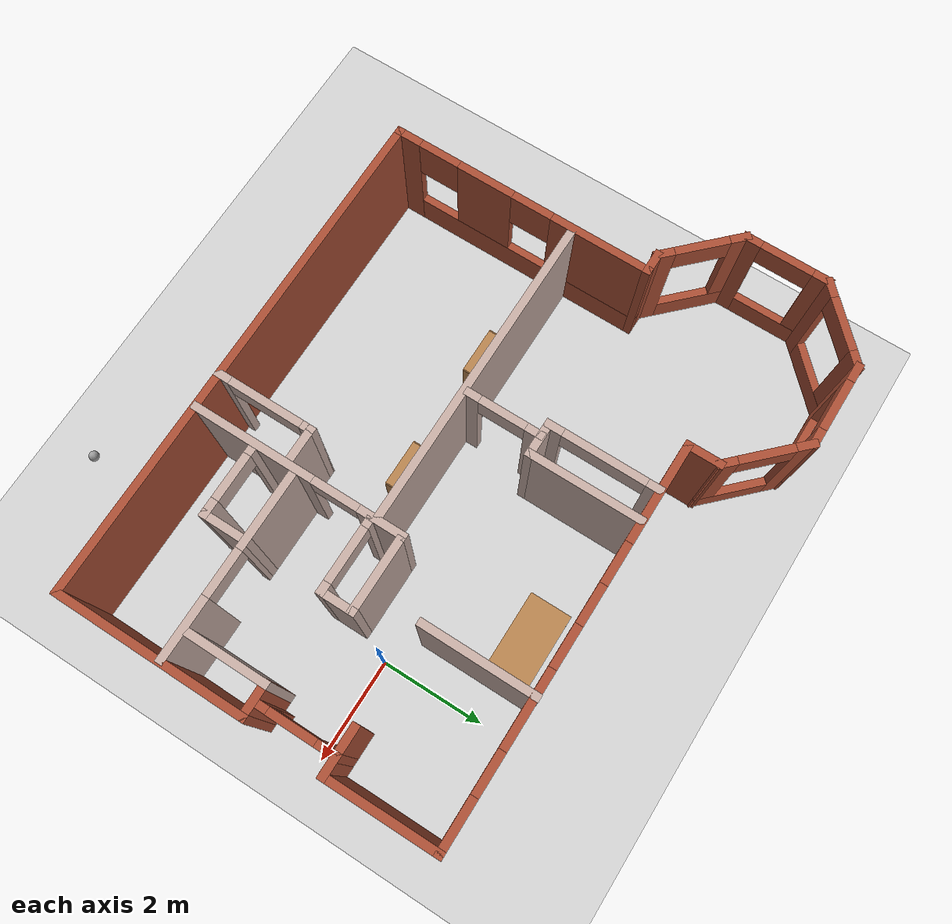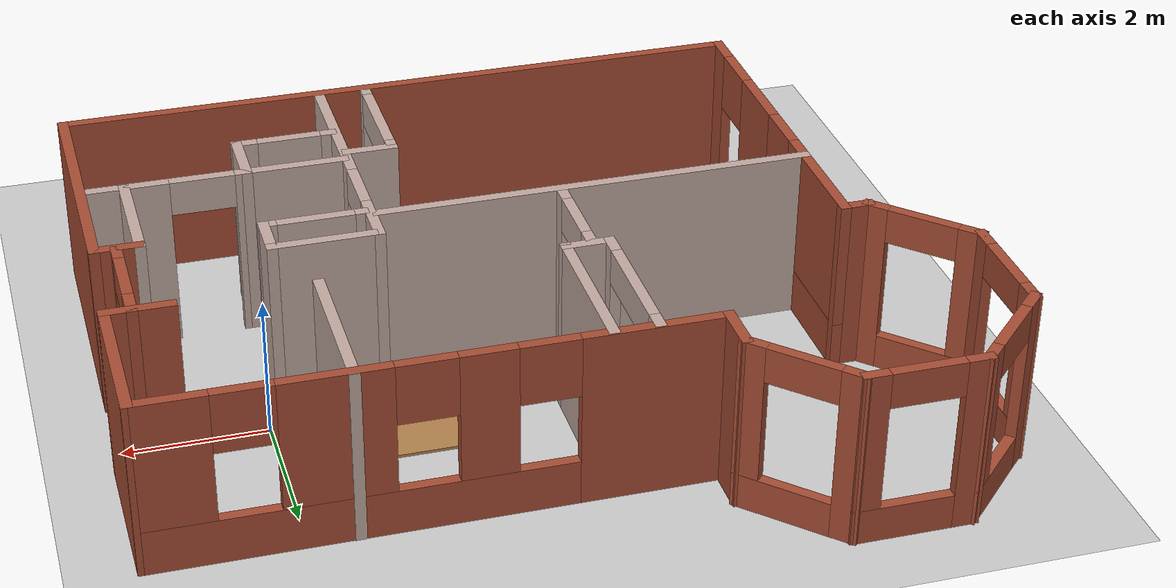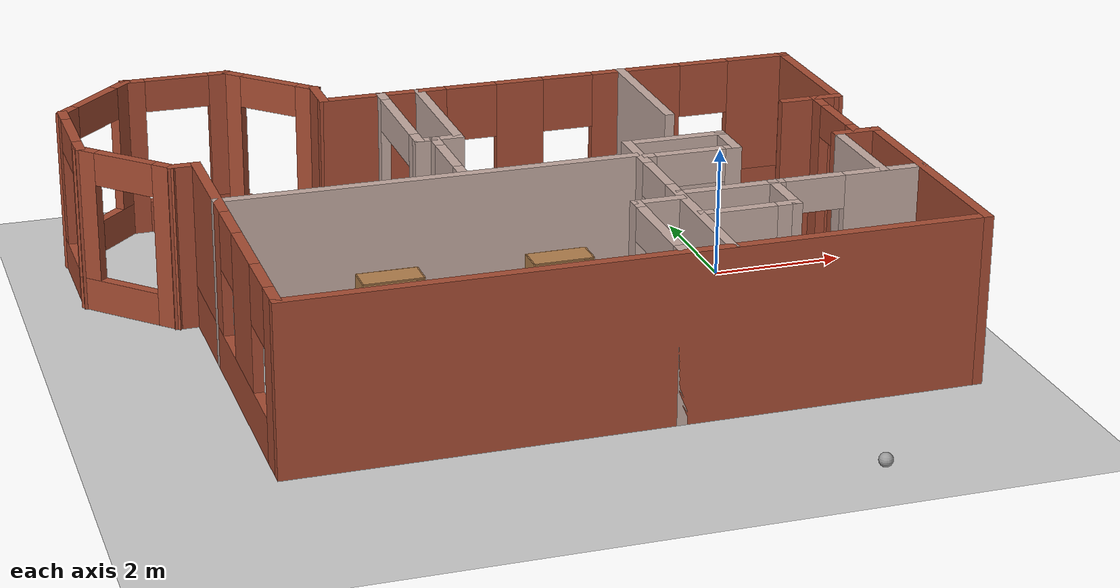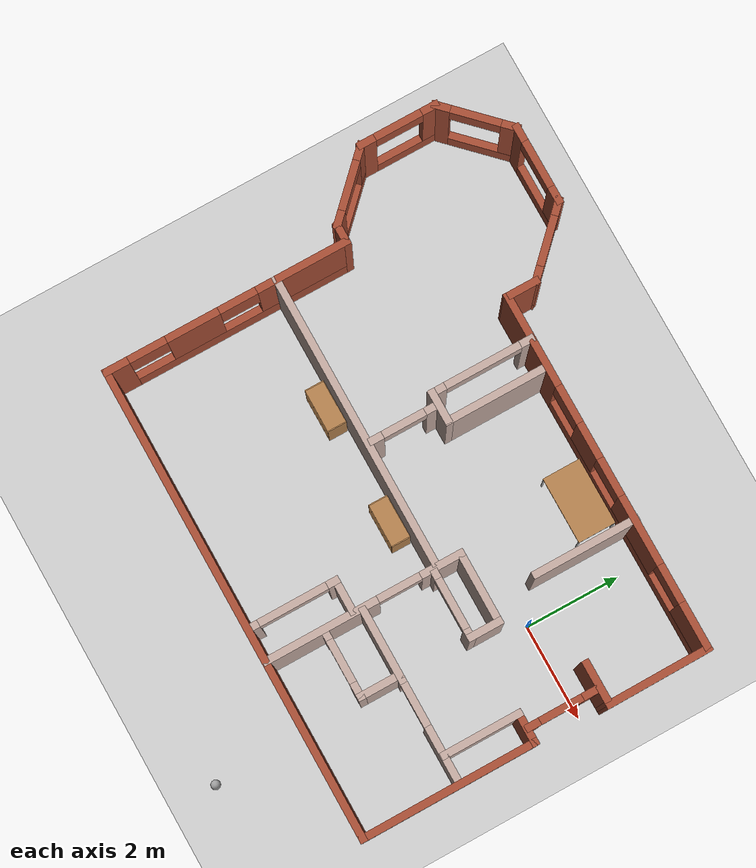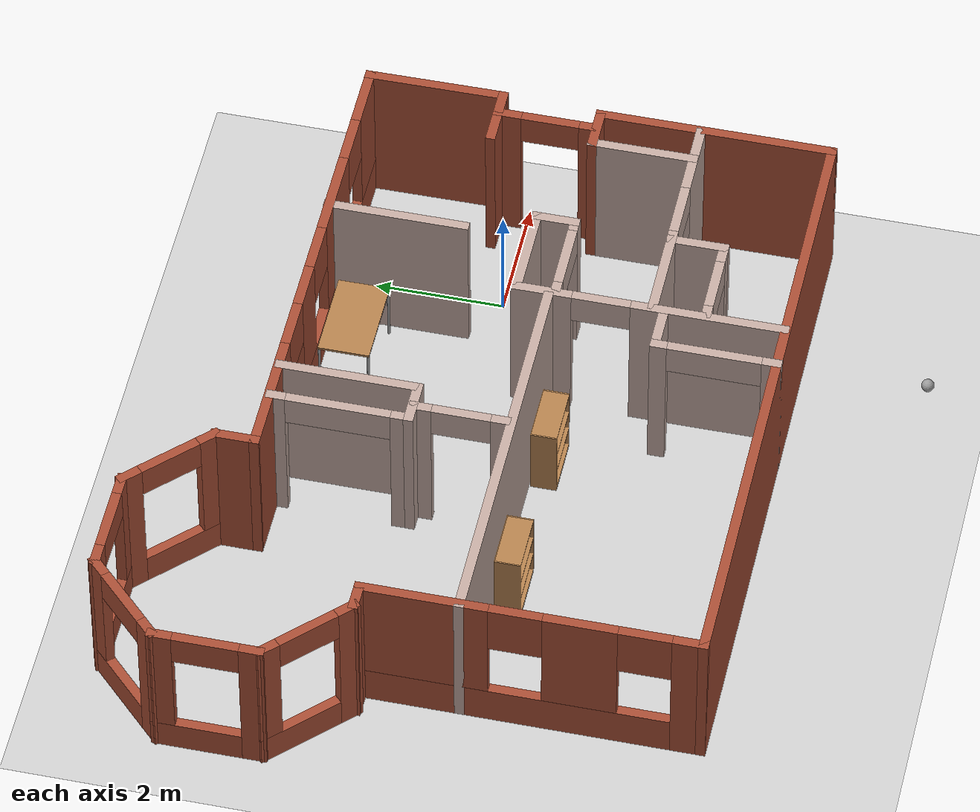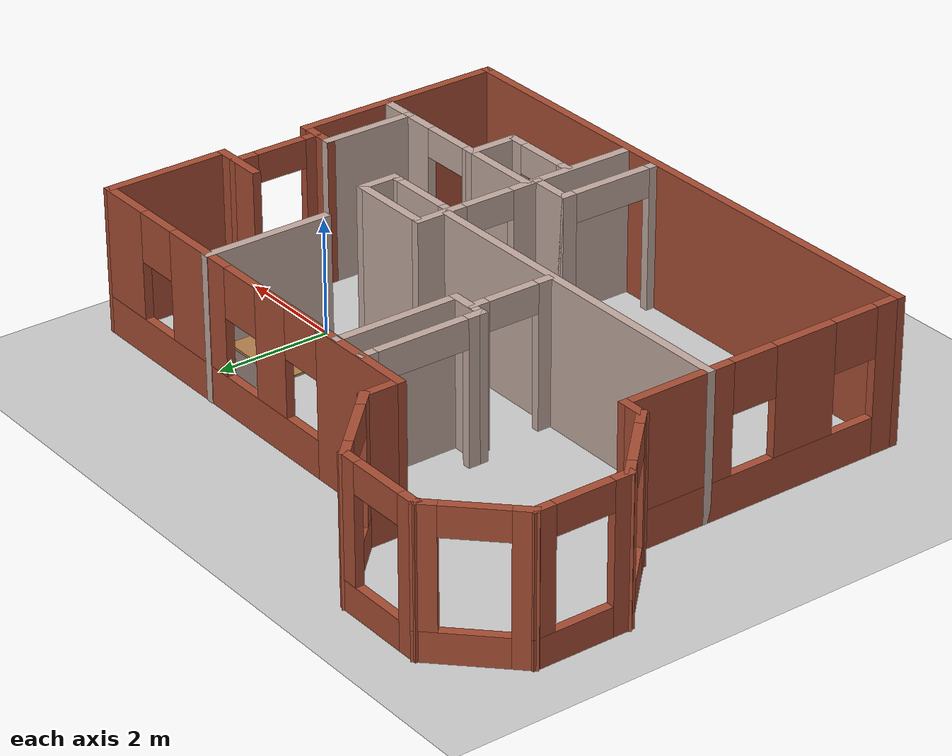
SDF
<sdf version="1.6">
 <world name="default">
  <model name="ground_plane">
   <static>1</static>
   <link name="link">
    <collision name="collision">
     <geometry><plane><normal>0 0 1</normal><size>100 100</size></plane></geometry>
     <surface><friction><ode><mu>100</mu><mu2>50</mu2></ode></friction></surface>
    </collision>
    <visual name="visual">
     <cast_shadows>0</cast_shadows>
     <geometry><plane><normal>0 0 1</normal><size>100 100</size></plane></geometry>
     <material>
      <script><uri>file://media/materials/scripts/gazebo.material</uri><name>Gazebo/Grey</name></script>
     </material>
    </visual>
   </link>
  </model>
  <light name="sun" type="directional">
   <pose>0 0 10 0 -0 0</pose>
   <diffuse>0.8 0.8 0.8 1</diffuse>
   <specular>0.2 0.2 0.2 1</specular>
   <attenuation>
    <range>1000</range>
    <constant>0.9</constant>
    <linear>0.01</linear>
    <quadratic>0.001</quadratic>
   </attenuation>
   <direction>-0.5 0.1 -0.9</direction>
  </light>
  <gravity>0 0 -9.8</gravity>
  <magnetic_field>6e-06 2.3e-05 -4.2e-05</magnetic_field>
  <atmosphere type="adiabatic"/>
  <physics name="default_physics" default="0" type="ode">
   <max_step_size>0.001</max_step_size>
   <real_time_factor>1</real_time_factor>
   <real_time_update_rate>1000</real_time_update_rate>
  </physics>
  <scene><ambient>0.4 0.4 0.4 1</ambient><background>0.7 0.7 0.7 1</background><shadows>1</shadows></scene>
  <audio><device>default</device></audio>
  <spherical_coordinates>
   <surface_model>EARTH_WGS84</surface_model>
   <latitude_deg>0</latitude_deg>
   <longitude_deg>0</longitude_deg>
   <elevation>0</elevation>
   <heading_deg>0</heading_deg>
  </spherical_coordinates>
  <model name="house">
   <pose>-3.64676 -0.18706 0 0 -0 0</pose>
   <link name="Wall_0">
    <collision name="Wall_0_Collision">
     <geometry><box><size>10 0.15 2.5</size></box></geometry>
     <pose>0 0 1.25 0 -0 0</pose>
    </collision>
    <visual name="Wall_0_Visual">
     <pose>0 0 1.25 0 -0 0</pose>
     <geometry><box><size>10 0.15 2.5</size></box></geometry>
     <material>
      <script><uri>file://media/materials/scripts/gazebo.material</uri><name>Gazebo/Bricks</name></script>
      <ambient>1 1 1 1</ambient>
     </material>
     <meta><layer>0</layer></meta>
    </visual>
    <pose>0.726039 -4.4969 0 0 -0 0</pose>
   </link>
   <link name="Wall_1">
    <collision name="Wall_1_Collision">
     <geometry><box><size>3.75 0.15 2.5</size></box></geometry>
     <pose>0 0 1.25 0 -0 0</pose>
    </collision>
    <visual name="Wall_1_Visual">
     <pose>0 0 1.25 0 -0 0</pose>
     <geometry><box><size>3.75 0.15 2.5</size></box></geometry>
     <material>
      <script><uri>file://media/materials/scripts/gazebo.material</uri><name>Gazebo/Bricks</name></script>
      <ambient>1 1 1 1</ambient>
     </material>
     <meta><layer>0</layer></meta>
    </visual>
    <pose>5.65104 -2.6969 0 0 -0 1.5708</pose>
   </link>
   <link name="Wall_10">
    <pose>1.96104 -2.4319 0 0 -0 1.5708</pose>
    <visual name="Wall_10_Visual_0">
     <pose>-0.9125 0 1.25 0 -0 0</pose>
     <geometry><box><size>2.415 0.15 2.5</size></box></geometry>
     <material>
      <script><uri>file://media/materials/scripts/gazebo.material</uri><name>Gazebo/Grey</name></script>
      <ambient>0.760784 0.662745 0.627451 1</ambient>
     </material>
     <meta><layer>0</layer></meta>
    </visual>
    <collision name="Wall_10_Collision_0">
     <geometry><box><size>2.415 0.15 2.5</size></box></geometry>
     <pose>-0.9125 0 1.25 0 -0 0</pose>
    </collision>
    <visual name="Wall_10_Visual_1">
     <pose>1.6575 0 1.25 0 -0 0</pose>
     <geometry><box><size>0.925 0.15 2.5</size></box></geometry>
     <material>
      <script><uri>file://media/materials/scripts/gazebo.material</uri><name>Gazebo/Grey</name></script>
      <ambient>0.760784 0.662745 0.627451 1</ambient>
     </material>
     <meta><layer>0</layer></meta>
    </visual>
    <collision name="Wall_10_Collision_1">
     <geometry><box><size>0.925 0.15 2.5</size></box></geometry>
     <pose>1.6575 0 1.25 0 -0 0</pose>
    </collision>
    <visual name="Wall_10_Visual_2">
     <pose>0.745 0 2.25 0 -0 0</pose>
     <geometry><box><size>0.9 0.15 0.5</size></box></geometry>
     <material>
      <script><uri>file://media/materials/scripts/gazebo.material</uri><name>Gazebo/Grey</name></script>
      <ambient>0.760784 0.662745 0.627451 1</ambient>
     </material>
     <meta><layer>0</layer></meta>
    </visual>
    <collision name="Wall_10_Collision_2">
     <geometry><box><size>0.9 0.15 0.5</size></box></geometry>
     <pose>0.745 0 2.25 0 -0 0</pose>
    </collision>
   </link>
   <link name="Wall_12">
    <collision name="Wall_12_Collision">
     <geometry><box><size>0.74 0.15 2.5</size></box></geometry>
     <pose>0 0 1.25 0 -0 0</pose>
    </collision>
    <visual name="Wall_12_Visual">
     <pose>0 0 1.25 0 -0 0</pose>
     <geometry><box><size>0.74 0.15 2.5</size></box></geometry>
     <material>
      <script><uri>file://media/materials/scripts/gazebo.material</uri><name>Gazebo/Grey</name></script>
      <ambient>0.760784 0.662745 0.627451 1</ambient>
     </material>
     <meta><layer>0</layer></meta>
    </visual>
    <pose>3.40104 -0.681904 0 0 -0 -1.5708</pose>
   </link>
   <link name="Wall_13">
    <pose>2.72604 -0.976904 0 0 -0 3.14159</pose>
    <visual name="Wall_13_Visual_0">
     <pose>-0.625 0 1.25 0 -0 0</pose>
     <geometry><box><size>0.25 0.15 2.5</size></box></geometry>
     <material>
      <script><uri>file://media/materials/scripts/gazebo.material</uri><name>Gazebo/Grey</name></script>
      <ambient>0.760784 0.662745 0.627451 1</ambient>
     </material>
     <meta><layer>0</layer></meta>
    </visual>
    <collision name="Wall_13_Collision_0">
     <geometry><box><size>0.25 0.15 2.5</size></box></geometry>
     <pose>-0.625 0 1.25 0 -0 0</pose>
    </collision>
    <visual name="Wall_13_Visual_1">
     <pose>0.655 0 1.25 0 -0 0</pose>
     <geometry><box><size>0.19 0.15 2.5</size></box></geometry>
     <material>
      <script><uri>file://media/materials/scripts/gazebo.material</uri><name>Gazebo/Grey</name></script>
      <ambient>0.760784 0.662745 0.627451 1</ambient>
     </material>
     <meta><layer>0</layer></meta>
    </visual>
    <collision name="Wall_13_Collision_1">
     <geometry><box><size>0.19 0.15 2.5</size></box></geometry>
     <pose>0.655 0 1.25 0 -0 0</pose>
    </collision>
    <visual name="Wall_13_Visual_2">
     <pose>0.03 0 2.25 0 -0 0</pose>
     <geometry><box><size>1.06 0.15 0.5</size></box></geometry>
     <material>
      <script><uri>file://media/materials/scripts/gazebo.material</uri><name>Gazebo/Grey</name></script>
      <ambient>0.760784 0.662745 0.627451 1</ambient>
     </material>
     <meta><layer>0</layer></meta>
    </visual>
    <collision name="Wall_13_Collision_2">
     <geometry><box><size>1.06 0.15 0.5</size></box></geometry>
     <pose>0.03 0 2.25 0 -0 0</pose>
    </collision>
   </link>
   <link name="Wall_15">
    <collision name="Wall_15_Collision">
     <geometry><box><size>1.5 0.15 2.5</size></box></geometry>
     <pose>0 0 1.25 0 -0 0</pose>
    </collision>
    <visual name="Wall_15_Visual">
     <pose>0 0 1.25 0 -0 0</pose>
     <geometry><box><size>1.5 0.15 2.5</size></box></geometry>
     <material>
      <script><uri>file://media/materials/scripts/gazebo.material</uri><name>Gazebo/Grey</name></script>
      <ambient>0.760784 0.662745 0.627451 1</ambient>
     </material>
     <meta><layer>0</layer></meta>
    </visual>
    <pose>2.72604 -0.386904 0 0 -0 3.14159</pose>
   </link>
   <link name="Wall_17">
    <collision name="Wall_17_Collision">
     <geometry><box><size>0.960062 0.15 2.5</size></box></geometry>
     <pose>0 0 1.25 0 -0 0</pose>
    </collision>
    <visual name="Wall_17_Visual">
     <pose>0 0 1.25 0 -0 0</pose>
     <geometry><box><size>0.960062 0.15 2.5</size></box></geometry>
     <material>
      <script><uri>file://media/materials/scripts/gazebo.material</uri><name>Gazebo/Grey</name></script>
      <ambient>0.760784 0.662745 0.627451 1</ambient>
     </material>
     <meta><layer>0</layer></meta>
    </visual>
    <pose>3.37104 -2.8719 0 0 -0 -1.5708</pose>
   </link>
   <link name="Wall_18">
    <pose>2.69604 -3.2769 0 0 -0 3.14159</pose>
    <visual name="Wall_18_Visual_0">
     <pose>-0.5675 0 1.25 0 -0 0</pose>
     <geometry><box><size>0.365 0.15 2.5</size></box></geometry>
     <material>
      <script><uri>file://media/materials/scripts/gazebo.material</uri><name>Gazebo/Grey</name></script>
      <ambient>0.760784 0.662745 0.627451 1</ambient>
     </material>
     <meta><layer>0</layer></meta>
    </visual>
    <collision name="Wall_18_Collision_0">
     <geometry><box><size>0.365 0.15 2.5</size></box></geometry>
     <pose>-0.5675 0 1.25 0 -0 0</pose>
    </collision>
    <visual name="Wall_18_Visual_1">
     <pose>0.6325 0 1.25 0 -0 0</pose>
     <geometry><box><size>0.235 0.15 2.5</size></box></geometry>
     <material>
      <script><uri>file://media/materials/scripts/gazebo.material</uri><name>Gazebo/Grey</name></script>
      <ambient>0.760784 0.662745 0.627451 1</ambient>
     </material>
     <meta><layer>0</layer></meta>
    </visual>
    <collision name="Wall_18_Collision_1">
     <geometry><box><size>0.235 0.15 2.5</size></box></geometry>
     <pose>0.6325 0 1.25 0 -0 0</pose>
    </collision>
    <visual name="Wall_18_Visual_2">
     <pose>0.065 0 2.25 0 -0 0</pose>
     <geometry><box><size>0.9 0.15 0.5</size></box></geometry>
     <material>
      <script><uri>file://media/materials/scripts/gazebo.material</uri><name>Gazebo/Grey</name></script>
      <ambient>0.760784 0.662745 0.627451 1</ambient>
     </material>
     <meta><layer>0</layer></meta>
    </visual>
    <collision name="Wall_18_Collision_2">
     <geometry><box><size>0.9 0.15 0.5</size></box></geometry>
     <pose>0.065 0 2.25 0 -0 0</pose>
    </collision>
   </link>
   <link name="Wall_2">
    <collision name="Wall_2_Collision">
     <geometry><box><size>0.75 0.15 2.5</size></box></geometry>
     <pose>0 0 1.25 0 -0 0</pose>
    </collision>
    <visual name="Wall_2_Visual">
     <pose>0 0 1.25 0 -0 0</pose>
     <geometry><box><size>0.75 0.15 2.5</size></box></geometry>
     <material>
      <script><uri>file://media/materials/scripts/gazebo.material</uri><name>Gazebo/Bricks</name></script>
      <ambient>1 1 1 1</ambient>
     </material>
     <meta><layer>0</layer></meta>
    </visual>
    <pose>5.35104 -0.896904 0 0 -0 3.14159</pose>
   </link>
   <link name="Wall_20">
    <pose>1.28104 -3.5719 0 0 -0 1.5708</pose>
    <visual name="Wall_20_Visual_0">
     <pose>-0.85 0 1.25 0 -0 0</pose>
     <geometry><box><size>0.3 0.15 2.5</size></box></geometry>
     <material>
      <script><uri>file://media/materials/scripts/gazebo.material</uri><name>Gazebo/Grey</name></script>
      <ambient>0.760784 0.662745 0.627451 1</ambient>
     </material>
     <meta><layer>0</layer></meta>
    </visual>
    <collision name="Wall_20_Collision_0">
     <geometry><box><size>0.3 0.15 2.5</size></box></geometry>
     <pose>-0.85 0 1.25 0 -0 0</pose>
    </collision>
    <visual name="Wall_20_Visual_1">
     <pose>0.87 0 1.25 0 -0 0</pose>
     <geometry><box><size>0.26 0.15 2.5</size></box></geometry>
     <material>
      <script><uri>file://media/materials/scripts/gazebo.material</uri><name>Gazebo/Grey</name></script>
      <ambient>0.760784 0.662745 0.627451 1</ambient>
     </material>
     <meta><layer>0</layer></meta>
    </visual>
    <collision name="Wall_20_Collision_1">
     <geometry><box><size>0.26 0.15 2.5</size></box></geometry>
     <pose>0.87 0 1.25 0 -0 0</pose>
    </collision>
    <visual name="Wall_20_Visual_2">
     <pose>0.02 0 2.25 0 -0 0</pose>
     <geometry><box><size>1.44 0.15 0.5</size></box></geometry>
     <material>
      <script><uri>file://media/materials/scripts/gazebo.material</uri><name>Gazebo/Grey</name></script>
      <ambient>0.760784 0.662745 0.627451 1</ambient>
     </material>
     <meta><layer>0</layer></meta>
    </visual>
    <collision name="Wall_20_Collision_2">
     <geometry><box><size>1.44 0.15 0.5</size></box></geometry>
     <pose>0.02 0 2.25 0 -0 0</pose>
    </collision>
   </link>
   <link name="Wall_21">
    <collision name="Wall_21_Collision">
     <geometry><box><size>0.79 0.15 2.5</size></box></geometry>
     <pose>0 0 1.25 0 -0 0</pose>
    </collision>
    <visual name="Wall_21_Visual">
     <pose>0 0 1.25 0 -0 0</pose>
     <geometry><box><size>0.79 0.15 2.5</size></box></geometry>
     <material>
      <script><uri>file://media/materials/scripts/gazebo.material</uri><name>Gazebo/Grey</name></script>
      <ambient>0.760784 0.662745 0.627451 1</ambient>
     </material>
     <meta><layer>0</layer></meta>
    </visual>
    <pose>1.60104 -2.6469 0 0 -0 0</pose>
   </link>
   <link name="Wall_23">
    <pose>-4.19896 -1.9469 0 0 -0 1.5708</pose>
    <visual name="Wall_23_Visual_0">
     <pose>-2.3575 0 1.25 0 -0 0</pose>
     <geometry><box><size>0.535 0.15 2.5</size></box></geometry>
     <material>
      <script><uri>file://media/materials/scripts/gazebo.material</uri><name>Gazebo/Bricks</name></script>
      <ambient>1 1 1 1</ambient>
     </material>
     <meta><layer>0</layer></meta>
    </visual>
    <collision name="Wall_23_Collision_0">
     <geometry><box><size>0.535 0.15 2.5</size></box></geometry>
     <pose>-2.3575 0 1.25 0 -0 0</pose>
    </collision>
    <visual name="Wall_23_Visual_1">
     <pose>0.2675 0 0.325 0 -0 0</pose>
     <geometry><box><size>4.715 0.15 0.65</size></box></geometry>
     <material>
      <script><uri>file://media/materials/scripts/gazebo.material</uri><name>Gazebo/Bricks</name></script>
      <ambient>1 1 1 1</ambient>
     </material>
     <meta><layer>0</layer></meta>
    </visual>
    <collision name="Wall_23_Collision_1">
     <geometry><box><size>4.715 0.15 0.65</size></box></geometry>
     <pose>0.2675 0 0.325 0 -0 0</pose>
    </collision>
    <visual name="Wall_23_Visual_2">
     <pose>-0.73 0 1.575 0 -0 0</pose>
     <geometry><box><size>1.12 0.15 1.85</size></box></geometry>
     <material>
      <script><uri>file://media/materials/scripts/gazebo.material</uri><name>Gazebo/Bricks</name></script>
      <ambient>1 1 1 1</ambient>
     </material>
     <meta><layer>0</layer></meta>
    </visual>
    <collision name="Wall_23_Collision_2">
     <geometry><box><size>1.12 0.15 1.85</size></box></geometry>
     <pose>-0.73 0 1.575 0 -0 0</pose>
    </collision>
    <visual name="Wall_23_Visual_3">
     <pose>1.6275 0 1.575 0 -0 0</pose>
     <geometry><box><size>1.995 0.15 1.85</size></box></geometry>
     <material>
      <script><uri>file://media/materials/scripts/gazebo.material</uri><name>Gazebo/Bricks</name></script>
      <ambient>1 1 1 1</ambient>
     </material>
     <meta><layer>0</layer></meta>
    </visual>
    <collision name="Wall_23_Collision_3">
     <geometry><box><size>1.995 0.15 1.85</size></box></geometry>
     <pose>1.6275 0 1.575 0 -0 0</pose>
    </collision>
    <visual name="Wall_23_Visual_4">
     <pose>-1.69 0 2.075 0 -0 0</pose>
     <geometry><box><size>0.8 0.15 0.85</size></box></geometry>
     <material>
      <script><uri>file://media/materials/scripts/gazebo.material</uri><name>Gazebo/Bricks</name></script>
      <ambient>1 1 1 1</ambient>
     </material>
     <meta><layer>0</layer></meta>
    </visual>
    <collision name="Wall_23_Collision_4">
     <geometry><box><size>0.8 0.15 0.85</size></box></geometry>
     <pose>-1.69 0 2.075 0 -0 0</pose>
    </collision>
    <visual name="Wall_23_Visual_5">
     <pose>0.23 0 2.075 0 -0 0</pose>
     <geometry><box><size>0.8 0.15 0.85</size></box></geometry>
     <material>
      <script><uri>file://media/materials/scripts/gazebo.material</uri><name>Gazebo/Bricks</name></script>
      <ambient>1 1 1 1</ambient>
     </material>
     <meta><layer>0</layer></meta>
    </visual>
    <collision name="Wall_23_Collision_5">
     <geometry><box><size>0.8 0.15 0.85</size></box></geometry>
     <pose>0.23 0 2.075 0 -0 0</pose>
    </collision>
   </link>
   <link name="Wall_24">
    <collision name="Wall_24_Collision">
     <geometry><box><size>0.5 0.15 2.5</size></box></geometry>
     <pose>0 0 1.25 0 -0 0</pose>
    </collision>
    <visual name="Wall_24_Visual">
     <pose>0 0 1.25 0 -0 0</pose>
     <geometry><box><size>0.5 0.15 2.5</size></box></geometry>
     <material>
      <script><uri>file://media/materials/scripts/gazebo.material</uri><name>Gazebo/Bricks</name></script>
      <ambient>1 1 1 1</ambient>
     </material>
     <meta><layer>0</layer></meta>
    </visual>
    <pose>-4.37396 0.603096 0 0 -0 3.14159</pose>
   </link>
   <link name="Wall_25">
    <pose>-5.11465 1.16878 0 0 -0 2.35619</pose>
    <visual name="Wall_25_Visual_0">
     <pose>-0.687985 0 1.25 0 -0 0</pose>
     <geometry><box><size>0.374031 0.15 2.5</size></box></geometry>
     <material>
      <script><uri>file://media/materials/scripts/gazebo.material</uri><name>Gazebo/Bricks</name></script>
      <ambient>1 1 1 1</ambient>
     </material>
     <meta><layer>0</layer></meta>
    </visual>
    <collision name="Wall_25_Collision_0">
     <geometry><box><size>0.374031 0.15 2.5</size></box></geometry>
     <pose>-0.687985 0 1.25 0 -0 0</pose>
    </collision>
    <visual name="Wall_25_Visual_1">
     <pose>0.187015 0 0.25 0 -0 0</pose>
     <geometry><box><size>1.37597 0.15 0.5</size></box></geometry>
     <material>
      <script><uri>file://media/materials/scripts/gazebo.material</uri><name>Gazebo/Bricks</name></script>
      <ambient>1 1 1 1</ambient>
     </material>
     <meta><layer>0</layer></meta>
    </visual>
    <collision name="Wall_25_Collision_1">
     <geometry><box><size>1.37597 0.15 0.5</size></box></geometry>
     <pose>0.187015 0 0.25 0 -0 0</pose>
    </collision>
    <visual name="Wall_25_Visual_2">
     <pose>0.687015 0 1.5 0 -0 0</pose>
     <geometry><box><size>0.375969 0.15 2</size></box></geometry>
     <material>
      <script><uri>file://media/materials/scripts/gazebo.material</uri><name>Gazebo/Bricks</name></script>
      <ambient>1 1 1 1</ambient>
     </material>
     <meta><layer>0</layer></meta>
    </visual>
    <collision name="Wall_25_Collision_2">
     <geometry><box><size>0.375969 0.15 2</size></box></geometry>
     <pose>0.687015 0 1.5 0 -0 0</pose>
    </collision>
    <visual name="Wall_25_Visual_3">
     <pose>-0.000969 0 2.25 0 -0 0</pose>
     <geometry><box><size>1 0.15 0.5</size></box></geometry>
     <material>
      <script><uri>file://media/materials/scripts/gazebo.material</uri><name>Gazebo/Bricks</name></script>
      <ambient>1 1 1 1</ambient>
     </material>
     <meta><layer>0</layer></meta>
    </visual>
    <collision name="Wall_25_Collision_3">
     <geometry><box><size>1 0.15 0.5</size></box></geometry>
     <pose>-0.000969 0 2.25 0 -0 0</pose>
    </collision>
   </link>
   <link name="Wall_26">
    <pose>-5.68033 2.53447 0 0 -0 1.5708</pose>
    <visual name="Wall_26_Visual_0">
     <pose>-0.688185 0 1.25 0 -0 0</pose>
     <geometry><box><size>0.373629 0.15 2.5</size></box></geometry>
     <material>
      <script><uri>file://media/materials/scripts/gazebo.material</uri><name>Gazebo/Bricks</name></script>
      <ambient>1 1 1 1</ambient>
     </material>
     <meta><layer>0</layer></meta>
    </visual>
    <collision name="Wall_26_Collision_0">
     <geometry><box><size>0.373629 0.15 2.5</size></box></geometry>
     <pose>-0.688185 0 1.25 0 -0 0</pose>
    </collision>
    <visual name="Wall_26_Visual_1">
     <pose>0.186815 0 0.25 0 -0 0</pose>
     <geometry><box><size>1.37637 0.15 0.5</size></box></geometry>
     <material>
      <script><uri>file://media/materials/scripts/gazebo.material</uri><name>Gazebo/Bricks</name></script>
      <ambient>1 1 1 1</ambient>
     </material>
     <meta><layer>0</layer></meta>
    </visual>
    <collision name="Wall_26_Collision_1">
     <geometry><box><size>1.37637 0.15 0.5</size></box></geometry>
     <pose>0.186815 0 0.25 0 -0 0</pose>
    </collision>
    <visual name="Wall_26_Visual_2">
     <pose>0.686815 0 1.5 0 -0 0</pose>
     <geometry><box><size>0.376371 0.15 2</size></box></geometry>
     <material>
      <script><uri>file://media/materials/scripts/gazebo.material</uri><name>Gazebo/Bricks</name></script>
      <ambient>1 1 1 1</ambient>
     </material>
     <meta><layer>0</layer></meta>
    </visual>
    <collision name="Wall_26_Collision_2">
     <geometry><box><size>0.376371 0.15 2</size></box></geometry>
     <pose>0.686815 0 1.5 0 -0 0</pose>
    </collision>
    <visual name="Wall_26_Visual_3">
     <pose>-0.001371 0 2.25 0 -0 0</pose>
     <geometry><box><size>1 0.15 0.5</size></box></geometry>
     <material>
      <script><uri>file://media/materials/scripts/gazebo.material</uri><name>Gazebo/Bricks</name></script>
      <ambient>1 1 1 1</ambient>
     </material>
     <meta><layer>0</layer></meta>
    </visual>
    <collision name="Wall_26_Collision_3">
     <geometry><box><size>1 0.15 0.5</size></box></geometry>
     <pose>-0.001371 0 2.25 0 -0 0</pose>
    </collision>
   </link>
   <link name="Wall_27">
    <pose>-5.11465 3.90015 0 0 -0 0.785398</pose>
    <visual name="Wall_27_Visual_0">
     <pose>-0.687985 0 1.25 0 -0 0</pose>
     <geometry><box><size>0.37403 0.15 2.5</size></box></geometry>
     <material>
      <script><uri>file://media/materials/scripts/gazebo.material</uri><name>Gazebo/Bricks</name></script>
      <ambient>1 1 1 1</ambient>
     </material>
     <meta><layer>0</layer></meta>
    </visual>
    <collision name="Wall_27_Collision_0">
     <geometry><box><size>0.37403 0.15 2.5</size></box></geometry>
     <pose>-0.687985 0 1.25 0 -0 0</pose>
    </collision>
    <visual name="Wall_27_Visual_1">
     <pose>0.187015 0 0.25 0 -0 0</pose>
     <geometry><box><size>1.37597 0.15 0.5</size></box></geometry>
     <material>
      <script><uri>file://media/materials/scripts/gazebo.material</uri><name>Gazebo/Bricks</name></script>
      <ambient>1 1 1 1</ambient>
     </material>
     <meta><layer>0</layer></meta>
    </visual>
    <collision name="Wall_27_Collision_1">
     <geometry><box><size>1.37597 0.15 0.5</size></box></geometry>
     <pose>0.187015 0 0.25 0 -0 0</pose>
    </collision>
    <visual name="Wall_27_Visual_2">
     <pose>0.687015 0 1.5 0 -0 0</pose>
     <geometry><box><size>0.37597 0.15 2</size></box></geometry>
     <material>
      <script><uri>file://media/materials/scripts/gazebo.material</uri><name>Gazebo/Bricks</name></script>
      <ambient>1 1 1 1</ambient>
     </material>
     <meta><layer>0</layer></meta>
    </visual>
    <collision name="Wall_27_Collision_2">
     <geometry><box><size>0.37597 0.15 2</size></box></geometry>
     <pose>0.687015 0 1.5 0 -0 0</pose>
    </collision>
    <visual name="Wall_27_Visual_3">
     <pose>-0.00097 0 2.25 0 -0 0</pose>
     <geometry><box><size>1 0.15 0.5</size></box></geometry>
     <material>
      <script><uri>file://media/materials/scripts/gazebo.material</uri><name>Gazebo/Bricks</name></script>
      <ambient>1 1 1 1</ambient>
     </material>
     <meta><layer>0</layer></meta>
    </visual>
    <collision name="Wall_27_Collision_3">
     <geometry><box><size>1 0.15 0.5</size></box></geometry>
     <pose>-0.00097 0 2.25 0 -0 0</pose>
    </collision>
   </link>
   <link name="Wall_28">
    <pose>-3.74896 4.46584 0 0 -0 0</pose>
    <visual name="Wall_28_Visual_0">
     <pose>-0.6875 0 1.25 0 -0 0</pose>
     <geometry><box><size>0.375 0.15 2.5</size></box></geometry>
     <material>
      <script><uri>file://media/materials/scripts/gazebo.material</uri><name>Gazebo/Bricks</name></script>
      <ambient>1 1 1 1</ambient>
     </material>
     <meta><layer>0</layer></meta>
    </visual>
    <collision name="Wall_28_Collision_0">
     <geometry><box><size>0.375 0.15 2.5</size></box></geometry>
     <pose>-0.6875 0 1.25 0 -0 0</pose>
    </collision>
    <visual name="Wall_28_Visual_1">
     <pose>0.1875 0 0.25 0 -0 0</pose>
     <geometry><box><size>1.375 0.15 0.5</size></box></geometry>
     <material>
      <script><uri>file://media/materials/scripts/gazebo.material</uri><name>Gazebo/Bricks</name></script>
      <ambient>1 1 1 1</ambient>
     </material>
     <meta><layer>0</layer></meta>
    </visual>
    <collision name="Wall_28_Collision_1">
     <geometry><box><size>1.375 0.15 0.5</size></box></geometry>
     <pose>0.1875 0 0.25 0 -0 0</pose>
    </collision>
    <visual name="Wall_28_Visual_2">
     <pose>0.6875 0 1.5 0 -0 0</pose>
     <geometry><box><size>0.375 0.15 2</size></box></geometry>
     <material>
      <script><uri>file://media/materials/scripts/gazebo.material</uri><name>Gazebo/Bricks</name></script>
      <ambient>1 1 1 1</ambient>
     </material>
     <meta><layer>0</layer></meta>
    </visual>
    <collision name="Wall_28_Collision_2">
     <geometry><box><size>0.375 0.15 2</size></box></geometry>
     <pose>0.6875 0 1.5 0 -0 0</pose>
    </collision>
    <visual name="Wall_28_Visual_3">
     <pose>0 0 2.25 0 -0 0</pose>
     <geometry><box><size>1 0.15 0.5</size></box></geometry>
     <material>
      <script><uri>file://media/materials/scripts/gazebo.material</uri><name>Gazebo/Bricks</name></script>
      <ambient>1 1 1 1</ambient>
     </material>
     <meta><layer>0</layer></meta>
    </visual>
    <collision name="Wall_28_Collision_3">
     <geometry><box><size>1 0.15 0.5</size></box></geometry>
     <pose>0 0 2.25 0 -0 0</pose>
    </collision>
   </link>
   <link name="Wall_29">
    <pose>-2.38327 3.90015 0 0 -0 -0.785398</pose>
    <visual name="Wall_29_Visual_0">
     <pose>-0.687015 0 1.25 0 -0 0</pose>
     <geometry><box><size>0.37597 0.15 2.5</size></box></geometry>
     <material>
      <script><uri>file://media/materials/scripts/gazebo.material</uri><name>Gazebo/Bricks</name></script>
      <ambient>1 1 1 1</ambient>
     </material>
     <meta><layer>0</layer></meta>
    </visual>
    <collision name="Wall_29_Collision_0">
     <geometry><box><size>0.37597 0.15 2.5</size></box></geometry>
     <pose>-0.687015 0 1.25 0 -0 0</pose>
    </collision>
    <visual name="Wall_29_Visual_1">
     <pose>0.187985 0 0.25 0 -0 0</pose>
     <geometry><box><size>1.37403 0.15 0.5</size></box></geometry>
     <material>
      <script><uri>file://media/materials/scripts/gazebo.material</uri><name>Gazebo/Bricks</name></script>
      <ambient>1 1 1 1</ambient>
     </material>
     <meta><layer>0</layer></meta>
    </visual>
    <collision name="Wall_29_Collision_1">
     <geometry><box><size>1.37403 0.15 0.5</size></box></geometry>
     <pose>0.187985 0 0.25 0 -0 0</pose>
    </collision>
    <visual name="Wall_29_Visual_2">
     <pose>0.687985 0 1.5 0 -0 0</pose>
     <geometry><box><size>0.37403 0.15 2</size></box></geometry>
     <material>
      <script><uri>file://media/materials/scripts/gazebo.material</uri><name>Gazebo/Bricks</name></script>
      <ambient>1 1 1 1</ambient>
     </material>
     <meta><layer>0</layer></meta>
    </visual>
    <collision name="Wall_29_Collision_2">
     <geometry><box><size>0.37403 0.15 2</size></box></geometry>
     <pose>0.687985 0 1.5 0 -0 0</pose>
    </collision>
    <visual name="Wall_29_Visual_3">
     <pose>0.00097 0 2.25 0 -0 0</pose>
     <geometry><box><size>1 0.15 0.5</size></box></geometry>
     <material>
      <script><uri>file://media/materials/scripts/gazebo.material</uri><name>Gazebo/Bricks</name></script>
      <ambient>1 1 1 1</ambient>
     </material>
     <meta><layer>0</layer></meta>
    </visual>
    <collision name="Wall_29_Collision_3">
     <geometry><box><size>1 0.15 0.5</size></box></geometry>
     <pose>0.00097 0 2.25 0 -0 0</pose>
    </collision>
   </link>
   <link name="Wall_3">
    <collision name="Wall_3_Collision">
     <geometry><box><size>1.71 0.15 2.5</size></box></geometry>
     <pose>0 0 1.25 0 -0 0</pose>
    </collision>
    <visual name="Wall_3_Visual">
     <pose>0 0 1.25 0 -0 0</pose>
     <geometry><box><size>1.71 0.15 2.5</size></box></geometry>
     <material>
      <script><uri>file://media/materials/scripts/gazebo.material</uri><name>Gazebo/Grey</name></script>
      <ambient>0.760784 0.662745 0.627451 1</ambient>
     </material>
     <meta><layer>0</layer></meta>
    </visual>
    <pose>5.05104 -1.6769 0 0 -0 -1.5708</pose>
   </link>
   <link name="Wall_30">
    <collision name="Wall_30_Collision">
     <geometry><box><size>0.75 0.15 2.5</size></box></geometry>
     <pose>0 0 1.25 0 -0 0</pose>
    </collision>
    <visual name="Wall_30_Visual">
     <pose>0 0 1.25 0 -0 0</pose>
     <geometry><box><size>0.75 0.15 2.5</size></box></geometry>
     <material>
      <script><uri>file://media/materials/scripts/gazebo.material</uri><name>Gazebo/Bricks</name></script>
      <ambient>1 1 1 1</ambient>
     </material>
     <meta><layer>0</layer></meta>
    </visual>
    <pose>-1.81759 3.03447 0 0 -0 -1.5708</pose>
   </link>
   <link name="Wall_31">
    <pose>1.94172 2.73378 0 0 -0 -0.000182</pose>
    <visual name="Wall_31_Visual_0">
     <pose>-2.83251 0 1.25 0 -0 0</pose>
     <geometry><box><size>2.00364 0.15 2.5</size></box></geometry>
     <material>
      <script><uri>file://media/materials/scripts/gazebo.material</uri><name>Gazebo/Bricks</name></script>
      <ambient>1 1 1 1</ambient>
     </material>
     <meta><layer>0</layer></meta>
    </visual>
    <collision name="Wall_31_Collision_0">
     <geometry><box><size>2.00364 0.15 2.5</size></box></geometry>
     <pose>-2.83251 0 1.25 0 -0 0</pose>
    </collision>
    <visual name="Wall_31_Visual_1">
     <pose>1.00182 0 0.325 0 -0 0</pose>
     <geometry><box><size>5.66502 0.15 0.65</size></box></geometry>
     <material>
      <script><uri>file://media/materials/scripts/gazebo.material</uri><name>Gazebo/Bricks</name></script>
      <ambient>1 1 1 1</ambient>
     </material>
     <meta><layer>0</layer></meta>
    </visual>
    <collision name="Wall_31_Collision_1">
     <geometry><box><size>5.66502 0.15 0.65</size></box></geometry>
     <pose>1.00182 0 0.325 0 -0 0</pose>
    </collision>
    <visual name="Wall_31_Visual_2">
     <pose>-0.650687 0 1.575 0 -0 0</pose>
     <geometry><box><size>0.760004 0.15 1.85</size></box></geometry>
     <material>
      <script><uri>file://media/materials/scripts/gazebo.material</uri><name>Gazebo/Bricks</name></script>
      <ambient>1 1 1 1</ambient>
     </material>
     <meta><layer>0</layer></meta>
    </visual>
    <collision name="Wall_31_Collision_2">
     <geometry><box><size>0.760004 0.15 1.85</size></box></geometry>
     <pose>-0.650687 0 1.575 0 -0 0</pose>
    </collision>
    <visual name="Wall_31_Visual_3">
     <pose>1.25932 0 1.575 0 -0 0</pose>
     <geometry><box><size>1.46 0.15 1.85</size></box></geometry>
     <material>
      <script><uri>file://media/materials/scripts/gazebo.material</uri><name>Gazebo/Bricks</name></script>
      <ambient>1 1 1 1</ambient>
     </material>
     <meta><layer>0</layer></meta>
    </visual>
    <collision name="Wall_31_Collision_3">
     <geometry><box><size>1.46 0.15 1.85</size></box></geometry>
     <pose>1.25932 0 1.575 0 -0 0</pose>
    </collision>
    <visual name="Wall_31_Visual_4">
     <pose>3.31182 0 1.575 0 -0 0</pose>
     <geometry><box><size>1.04501 0.15 1.85</size></box></geometry>
     <material>
      <script><uri>file://media/materials/scripts/gazebo.material</uri><name>Gazebo/Bricks</name></script>
      <ambient>1 1 1 1</ambient>
     </material>
     <meta><layer>0</layer></meta>
    </visual>
    <collision name="Wall_31_Collision_4">
     <geometry><box><size>1.04501 0.15 1.85</size></box></geometry>
     <pose>3.31182 0 1.575 0 -0 0</pose>
    </collision>
    <visual name="Wall_31_Visual_5">
     <pose>-1.43069 0 2.075 0 -0 0</pose>
     <geometry><box><size>0.8 0.15 0.85</size></box></geometry>
     <material>
      <script><uri>file://media/materials/scripts/gazebo.material</uri><name>Gazebo/Bricks</name></script>
      <ambient>1 1 1 1</ambient>
     </material>
     <meta><layer>0</layer></meta>
    </visual>
    <collision name="Wall_31_Collision_5">
     <geometry><box><size>0.8 0.15 0.85</size></box></geometry>
     <pose>-1.43069 0 2.075 0 -0 0</pose>
    </collision>
    <visual name="Wall_31_Visual_6">
     <pose>0.129315 0 2.075 0 -0 0</pose>
     <geometry><box><size>0.8 0.15 0.85</size></box></geometry>
     <material>
      <script><uri>file://media/materials/scripts/gazebo.material</uri><name>Gazebo/Bricks</name></script>
      <ambient>1 1 1 1</ambient>
     </material>
     <meta><layer>0</layer></meta>
    </visual>
    <collision name="Wall_31_Collision_6">
     <geometry><box><size>0.8 0.15 0.85</size></box></geometry>
     <pose>0.129315 0 2.075 0 -0 0</pose>
    </collision>
    <visual name="Wall_31_Visual_7">
     <pose>2.38932 0 2.075 0 -0 0</pose>
     <geometry><box><size>0.8 0.15 0.85</size></box></geometry>
     <material>
      <script><uri>file://media/materials/scripts/gazebo.material</uri><name>Gazebo/Bricks</name></script>
      <ambient>1 1 1 1</ambient>
     </material>
     <meta><layer>0</layer></meta>
    </visual>
    <collision name="Wall_31_Collision_7">
     <geometry><box><size>0.8 0.15 0.85</size></box></geometry>
     <pose>2.38932 0 2.075 0 -0 0</pose>
    </collision>
   </link>
   <link name="Wall_32">
    <collision name="Wall_32_Collision">
     <geometry><box><size>2.2401 0.15 2.5</size></box></geometry>
     <pose>0 0 1.25 0 -0 0</pose>
    </collision>
    <visual name="Wall_32_Visual">
     <pose>0 0 1.25 0 -0 0</pose>
     <geometry><box><size>2.2401 0.15 2.5</size></box></geometry>
     <material>
      <script><uri>file://media/materials/scripts/gazebo.material</uri><name>Gazebo/Bricks</name></script>
      <ambient>1 1 1 1</ambient>
     </material>
     <meta><layer>0</layer></meta>
    </visual>
    <pose>5.70604 1.6881 0 0 -0 -1.56601</pose>
   </link>
   <link name="Wall_33">
    <collision name="Wall_33_Collision">
     <geometry><box><size>1 0.15 2.5</size></box></geometry>
     <pose>0 0 1.25 0 -0 0</pose>
    </collision>
    <visual name="Wall_33_Visual">
     <pose>0 0 1.25 0 -0 0</pose>
     <geometry><box><size>1 0.15 2.5</size></box></geometry>
     <material>
      <script><uri>file://media/materials/scripts/gazebo.material</uri><name>Gazebo/Bricks</name></script>
      <ambient>1 1 1 1</ambient>
     </material>
     <meta><layer>0</layer></meta>
    </visual>
    <pose>5.28604 0.643096 0 0 -0 3.14159</pose>
   </link>
   <link name="Wall_35">
    <collision name="Wall_35_Collision">
     <geometry><box><size>6.22001 0.15 2.5</size></box></geometry>
     <pose>0 0 1.25 0 -0 0</pose>
    </collision>
    <visual name="Wall_35_Visual">
     <pose>0 0 1.25 0 -0 0</pose>
     <geometry><box><size>6.22001 0.15 2.5</size></box></geometry>
     <material>
      <script><uri>file://media/materials/scripts/gazebo.material</uri><name>Gazebo/Grey</name></script>
      <ambient>0.760784 0.662745 0.627451 1</ambient>
     </material>
     <meta><layer>0</layer></meta>
    </visual>
    <pose>-1.16396 -0.886904 0 0 -0 0</pose>
   </link>
   <link name="Wall_37">
    <collision name="Wall_37_Collision">
     <geometry><box><size>2.25 0.15 2.5</size></box></geometry>
     <pose>0 0 1.25 0 -0 0</pose>
    </collision>
    <visual name="Wall_37_Visual">
     <pose>0 0 1.25 0 -0 0</pose>
     <geometry><box><size>2.25 0.15 2.5</size></box></geometry>
     <material>
      <script><uri>file://media/materials/scripts/gazebo.material</uri><name>Gazebo/Grey</name></script>
      <ambient>0.760784 0.662745 0.627451 1</ambient>
     </material>
     <meta><layer>0</layer></meta>
    </visual>
    <pose>-0.308961 1.6631 0 0 -0 -1.5708</pose>
   </link>
   <link name="Wall_38">
    <collision name="Wall_38_Collision">
     <geometry><box><size>0.75 0.15 2.5</size></box></geometry>
     <pose>0 0 1.25 0 -0 0</pose>
    </collision>
    <visual name="Wall_38_Visual">
     <pose>0 0 1.25 0 -0 0</pose>
     <geometry><box><size>0.75 0.15 2.5</size></box></geometry>
     <material>
      <script><uri>file://media/materials/scripts/gazebo.material</uri><name>Gazebo/Grey</name></script>
      <ambient>0.760784 0.662745 0.627451 1</ambient>
     </material>
     <meta><layer>0</layer></meta>
    </visual>
    <pose>-0.608961 0.613096 0 0 -0 3.14159</pose>
   </link>
   <link name="Wall_39">
    <pose>-0.908961 1.6631 0 0 -0 1.5708</pose>
    <visual name="Wall_39_Visual_0">
     <pose>-0.95 0 1.25 0 -0 0</pose>
     <geometry><box><size>0.35 0.15 2.5</size></box></geometry>
     <material>
      <script><uri>file://media/materials/scripts/gazebo.material</uri><name>Gazebo/Grey</name></script>
      <ambient>0.760784 0.662745 0.627451 1</ambient>
     </material>
     <meta><layer>0</layer></meta>
    </visual>
    <collision name="Wall_39_Collision_0">
     <geometry><box><size>0.35 0.15 2.5</size></box></geometry>
     <pose>-0.95 0 1.25 0 -0 0</pose>
    </collision>
    <visual name="Wall_39_Visual_1">
     <pose>0.975 0 1.25 0 -0 0</pose>
     <geometry><box><size>0.3 0.15 2.5</size></box></geometry>
     <material>
      <script><uri>file://media/materials/scripts/gazebo.material</uri><name>Gazebo/Grey</name></script>
      <ambient>0.760784 0.662745 0.627451 1</ambient>
     </material>
     <meta><layer>0</layer></meta>
    </visual>
    <collision name="Wall_39_Collision_1">
     <geometry><box><size>0.3 0.15 2.5</size></box></geometry>
     <pose>0.975 0 1.25 0 -0 0</pose>
    </collision>
    <visual name="Wall_39_Visual_2">
     <pose>0.025 0 2.25 0 -0 0</pose>
     <geometry><box><size>1.6 0.15 0.5</size></box></geometry>
     <material>
      <script><uri>file://media/materials/scripts/gazebo.material</uri><name>Gazebo/Grey</name></script>
      <ambient>0.760784 0.662745 0.627451 1</ambient>
     </material>
     <meta><layer>0</layer></meta>
    </visual>
    <collision name="Wall_39_Collision_2">
     <geometry><box><size>1.6 0.15 0.5</size></box></geometry>
     <pose>0.025 0 2.25 0 -0 0</pose>
    </collision>
   </link>
   <link name="Wall_41">
    <pose>-0.668961 -0.101904 0 0 -0 -1.5708</pose>
    <visual name="Wall_41_Visual_0">
     <pose>-0.5975 0 1.25 0 -0 0</pose>
     <geometry><box><size>0.345 0.15 2.5</size></box></geometry>
     <material>
      <script><uri>file://media/materials/scripts/gazebo.material</uri><name>Gazebo/Grey</name></script>
      <ambient>0.760784 0.662745 0.627451 1</ambient>
     </material>
     <meta><layer>0</layer></meta>
    </visual>
    <collision name="Wall_41_Collision_0">
     <geometry><box><size>0.345 0.15 2.5</size></box></geometry>
     <pose>-0.5975 0 1.25 0 -0 0</pose>
    </collision>
    <visual name="Wall_41_Visual_1">
     <pose>0.6225 0 1.25 0 -0 0</pose>
     <geometry><box><size>0.295 0.15 2.5</size></box></geometry>
     <material>
      <script><uri>file://media/materials/scripts/gazebo.material</uri><name>Gazebo/Grey</name></script>
      <ambient>0.760784 0.662745 0.627451 1</ambient>
     </material>
     <meta><layer>0</layer></meta>
    </visual>
    <collision name="Wall_41_Collision_1">
     <geometry><box><size>0.295 0.15 2.5</size></box></geometry>
     <pose>0.6225 0 1.25 0 -0 0</pose>
    </collision>
    <visual name="Wall_41_Visual_2">
     <pose>0.025 0 2.25 0 -0 0</pose>
     <geometry><box><size>0.9 0.15 0.5</size></box></geometry>
     <material>
      <script><uri>file://media/materials/scripts/gazebo.material</uri><name>Gazebo/Grey</name></script>
      <ambient>0.760784 0.662745 0.627451 1</ambient>
     </material>
     <meta><layer>0</layer></meta>
    </visual>
    <collision name="Wall_41_Collision_2">
     <geometry><box><size>0.9 0.15 0.5</size></box></geometry>
     <pose>0.025 0 2.25 0 -0 0</pose>
    </collision>
   </link>
   <link name="Wall_45">
    <collision name="Wall_45_Collision">
     <geometry><box><size>2.25 0.15 2.5</size></box></geometry>
     <pose>0 0 1.25 0 -0 0</pose>
    </collision>
    <visual name="Wall_45_Visual">
     <pose>0 0 1.25 0 -0 0</pose>
     <geometry><box><size>2.25 0.15 2.5</size></box></geometry>
     <material>
      <script><uri>file://media/materials/scripts/gazebo.material</uri><name>Gazebo/Grey</name></script>
      <ambient>0.760784 0.662745 0.627451 1</ambient>
     </material>
     <meta><layer>0</layer></meta>
    </visual>
    <pose>2.97104 1.6931 0 0 -0 -1.5708</pose>
   </link>
   <link name="Wall_47">
    <pose>5.36104 -0.106904 0 0 -0 -1.5708</pose>
    <visual name="Wall_47_Visual_0">
     <pose>-0.602533 0 1.25 0 -0 0</pose>
     <geometry><box><size>0.445067 0.15 2.5</size></box></geometry>
     <material>
      <script><uri>file://media/materials/scripts/gazebo.material</uri><name>Gazebo/Bricks</name></script>
      <ambient>1 1 1 1</ambient>
     </material>
     <meta><layer>0</layer></meta>
    </visual>
    <collision name="Wall_47_Collision_0">
     <geometry><box><size>0.445067 0.15 2.5</size></box></geometry>
     <pose>-0.602533 0 1.25 0 -0 0</pose>
    </collision>
    <visual name="Wall_47_Visual_1">
     <pose>0.672533 0 1.25 0 -0 0</pose>
     <geometry><box><size>0.305067 0.15 2.5</size></box></geometry>
     <material>
      <script><uri>file://media/materials/scripts/gazebo.material</uri><name>Gazebo/Bricks</name></script>
      <ambient>1 1 1 1</ambient>
     </material>
     <meta><layer>0</layer></meta>
    </visual>
    <collision name="Wall_47_Collision_1">
     <geometry><box><size>0.305067 0.15 2.5</size></box></geometry>
     <pose>0.672533 0 1.25 0 -0 0</pose>
    </collision>
    <visual name="Wall_47_Visual_2">
     <pose>0.07 0 2.25 0 -0 0</pose>
     <geometry><box><size>0.9 0.15 0.5</size></box></geometry>
     <material>
      <script><uri>file://media/materials/scripts/gazebo.material</uri><name>Gazebo/Bricks</name></script>
      <ambient>1 1 1 1</ambient>
     </material>
     <meta><layer>0</layer></meta>
    </visual>
    <collision name="Wall_47_Collision_2">
     <geometry><box><size>0.9 0.15 0.5</size></box></geometry>
     <pose>0.07 0 2.25 0 -0 0</pose>
    </collision>
   </link>
   <link name="Wall_8">
    <pose>3.81104 -2.4669 0 0 -0 3.14159</pose>
    <visual name="Wall_8_Visual_0">
     <pose>-1.2525 0 1.25 0 -0 0</pose>
     <geometry><box><size>1.245 0.15 2.5</size></box></geometry>
     <material>
      <script><uri>file://media/materials/scripts/gazebo.material</uri><name>Gazebo/Grey</name></script>
      <ambient>0.760784 0.662745 0.627451 1</ambient>
     </material>
     <meta><layer>0</layer></meta>
    </visual>
    <collision name="Wall_8_Collision_0">
     <geometry><box><size>1.245 0.15 2.5</size></box></geometry>
     <pose>-1.2525 0 1.25 0 -0 0</pose>
    </collision>
    <visual name="Wall_8_Visual_1">
     <pose>1.0725 0 1.25 0 -0 0</pose>
     <geometry><box><size>1.605 0.15 2.5</size></box></geometry>
     <material>
      <script><uri>file://media/materials/scripts/gazebo.material</uri><name>Gazebo/Grey</name></script>
      <ambient>0.760784 0.662745 0.627451 1</ambient>
     </material>
     <meta><layer>0</layer></meta>
    </visual>
    <collision name="Wall_8_Collision_1">
     <geometry><box><size>1.605 0.15 2.5</size></box></geometry>
     <pose>1.0725 0 1.25 0 -0 0</pose>
    </collision>
    <visual name="Wall_8_Visual_2">
     <pose>-0.18 0 2.25 0 -0 0</pose>
     <geometry><box><size>0.9 0.15 0.5</size></box></geometry>
     <material>
      <script><uri>file://media/materials/scripts/gazebo.material</uri><name>Gazebo/Grey</name></script>
      <ambient>0.760784 0.662745 0.627451 1</ambient>
     </material>
     <meta><layer>0</layer></meta>
    </visual>
    <collision name="Wall_8_Collision_2">
     <geometry><box><size>0.9 0.15 0.5</size></box></geometry>
     <pose>-0.18 0 2.25 0 -0 0</pose>
    </collision>
   </link>
   <static>1</static>
  </model>
  <model name="table">
   <static>0</static>
   <link name="link">
    <collision name="surface">
     <pose>0 0 1 0 -0 0</pose>
     <geometry><box><size>1.5 0.8 0.03</size></box></geometry>
     <surface><friction><ode><mu>0.6</mu><mu2>0.6</mu2></ode></friction></surface>
    </collision>
    <visual name="visual1">
     <pose>0 0 1 0 -0 0</pose>
     <geometry><box><size>1.4 0.8 0.04</size></box></geometry>
     <material>
      <script><uri>file://media/materials/scripts/gazebo.material</uri><name>Gazebo/Wood</name></script>
     </material>
    </visual>
    <collision name="front_left_leg">
     <pose>0.68 0.38 0.5 0 -0 0</pose>
     <geometry><cylinder><radius>0.02</radius><length>1</length></cylinder></geometry>
    </collision>
    <visual name="front_left_leg">
     <pose>0.68 0.38 0.5 0 -0 0</pose>
     <geometry><cylinder><radius>0.02</radius><length>1</length></cylinder></geometry>
     <material>
      <script><uri>file://media/materials/scripts/gazebo.material</uri><name>Gazebo/Grey</name></script>
     </material>
    </visual>
    <collision name="front_right_leg">
     <pose>0.68 -0.38 0.5 0 -0 0</pose>
     <geometry><cylinder><radius>0.02</radius><length>1</length></cylinder></geometry>
    </collision>
    <visual name="front_right_leg">
     <pose>0.68 -0.38 0.5 0 -0 0</pose>
     <geometry><cylinder><radius>0.02</radius><length>1</length></cylinder></geometry>
     <material>
      <script><uri>file://media/materials/scripts/gazebo.material</uri><name>Gazebo/Grey</name></script>
     </material>
    </visual>
    <collision name="back_right_leg">
     <pose>-0.68 -0.38 0.5 0 -0 0</pose>
     <geometry><cylinder><radius>0.02</radius><length>1</length></cylinder></geometry>
    </collision>
    <visual name="back_right_leg">
     <pose>-0.68 -0.38 0.5 0 -0 0</pose>
     <geometry><cylinder><radius>0.02</radius><length>1</length></cylinder></geometry>
     <material>
      <script><uri>file://media/materials/scripts/gazebo.material</uri><name>Gazebo/Grey</name></script>
     </material>
    </visual>
    <collision name="back_left_leg">
     <pose>-0.68 0.38 0.5 0 -0 0</pose>
     <geometry><cylinder><radius>0.02</radius><length>1</length></cylinder></geometry>
    </collision>
    <visual name="back_left_leg">
     <pose>-0.68 0.38 0.5 0 -0 0</pose>
     <geometry><cylinder><radius>0.02</radius><length>1</length></cylinder></geometry>
     <material>
      <script><uri>file://media/materials/scripts/gazebo.material</uri><name>Gazebo/Grey</name></script>
     </material>
    </visual>
    <inertial>
     <inertia><ixx>1</ixx><ixy>0</ixy><ixz>0</ixz><iyy>1</iyy><iyz>0</iyz><izz>1</izz></inertia>
     <mass>1</mass>
    </inertial>
   </link>
   <pose>-1.57884 1.97956 -2e-06 0 -0 0</pose>
  </model>
  <model name="bookshelf">
   <static>1</static>
   <link name="link">
    <inertial><mass>1</mass></inertial>
    <collision name="back">
     <pose>0 0.005 0.6 0 -0 0</pose>
     <geometry><box><size>0.9 0.01 1.2</size></box></geometry>
    </collision>
    <visual name="visual1">
     <pose>0 0.005 0.6 0 -0 0</pose>
     <geometry><box><size>0.9 0.01 1.2</size></box></geometry>
     <material>
      <script><uri>file://media/materials/scripts/gazebo.material</uri><name>Gazebo/Wood</name></script>
     </material>
    </visual>
    <collision name="left_side">
     <pose>0.45 -0.195 0.6 0 -0 0</pose>
     <geometry><box><size>0.02 0.4 1.2</size></box></geometry>
    </collision>
    <visual name="visual2">
     <pose>0.45 -0.195 0.6 0 -0 0</pose>
     <geometry><box><size>0.02 0.4 1.2</size></box></geometry>
     <material>
      <script><uri>file://media/materials/scripts/gazebo.material</uri><name>Gazebo/Wood</name></script>
     </material>
    </visual>
    <collision name="right_side">
     <pose>-0.45 -0.195 0.6 0 -0 0</pose>
     <geometry><box><size>0.02 0.4 1.2</size></box></geometry>
    </collision>
    <visual name="visual3">
     <pose>-0.45 -0.195 0.6 0 -0 0</pose>
     <geometry><box><size>0.02 0.4 1.2</size></box></geometry>
     <material>
      <script><uri>file://media/materials/scripts/gazebo.material</uri><name>Gazebo/Wood</name></script>
     </material>
    </visual>
    <collision name="bottom">
     <pose>0 -0.195 0.03 0 -0 0</pose>
     <geometry><box><size>0.88 0.4 0.06</size></box></geometry>
    </collision>
    <visual name="visual4">
     <pose>0 -0.195 0.03 0 -0 0</pose>
     <geometry><box><size>0.88 0.4 0.06</size></box></geometry>
     <material>
      <script><uri>file://media/materials/scripts/gazebo.material</uri><name>Gazebo/Wood</name></script>
     </material>
    </visual>
    <collision name="top">
     <pose>0 -0.195 1.19 0 -0 0</pose>
     <geometry><box><size>0.88 0.4 0.02</size></box></geometry>
    </collision>
    <visual name="visual5">
     <pose>0 -0.195 1.19 0 -0 0</pose>
     <geometry><box><size>0.88 0.4 0.02</size></box></geometry>
     <material>
      <script><uri>file://media/materials/scripts/gazebo.material</uri><name>Gazebo/Wood</name></script>
     </material>
    </visual>
    <collision name="low_shelf">
     <pose>0 -0.195 0.43 0 -0 0</pose>
     <geometry><box><size>0.88 0.4 0.02</size></box></geometry>
    </collision>
    <visual name="visual6">
     <pose>0 -0.195 0.43 0 -0 0</pose>
     <geometry><box><size>0.88 0.4 0.02</size></box></geometry>
     <material>
      <script><uri>file://media/materials/scripts/gazebo.material</uri><name>Gazebo/Wood</name></script>
     </material>
    </visual>
    <collision name="high_shelf">
     <pose>0 -0.195 0.8 0 -0 0</pose>
     <geometry><box><size>0.88 0.4 0.02</size></box></geometry>
    </collision>
    <visual name="visual7">
     <pose>0 -0.195 0.8 0 -0 0</pose>
     <geometry><box><size>0.88 0.4 0.02</size></box></geometry>
     <material>
      <script><uri>file://media/materials/scripts/gazebo.material</uri><name>Gazebo/Wood</name></script>
     </material>
    </visual>
   </link>
   <pose>-2.97546 -1.17801 0 0 -0 0</pose>
  </model>
  <model name="bookshelf_0">
   <static>1</static>
   <link name="link">
    <inertial><mass>1</mass></inertial>
    <collision name="back">
     <pose>0 0.005 0.6 0 -0 0</pose>
     <geometry><box><size>0.9 0.01 1.2</size></box></geometry>
    </collision>
    <visual name="visual1">
     <pose>0 0.005 0.6 0 -0 0</pose>
     <geometry><box><size>0.9 0.01 1.2</size></box></geometry>
     <material>
      <script><uri>file://media/materials/scripts/gazebo.material</uri><name>Gazebo/Wood</name></script>
     </material>
    </visual>
    <collision name="left_side">
     <pose>0.45 -0.195 0.6 0 -0 0</pose>
     <geometry><box><size>0.02 0.4 1.2</size></box></geometry>
    </collision>
    <visual name="visual2">
     <pose>0.45 -0.195 0.6 0 -0 0</pose>
     <geometry><box><size>0.02 0.4 1.2</size></box></geometry>
     <material>
      <script><uri>file://media/materials/scripts/gazebo.material</uri><name>Gazebo/Wood</name></script>
     </material>
    </visual>
    <collision name="right_side">
     <pose>-0.45 -0.195 0.6 0 -0 0</pose>
     <geometry><box><size>0.02 0.4 1.2</size></box></geometry>
    </collision>
    <visual name="visual3">
     <pose>-0.45 -0.195 0.6 0 -0 0</pose>
     <geometry><box><size>0.02 0.4 1.2</size></box></geometry>
     <material>
      <script><uri>file://media/materials/scripts/gazebo.material</uri><name>Gazebo/Wood</name></script>
     </material>
    </visual>
    <collision name="bottom">
     <pose>0 -0.195 0.03 0 -0 0</pose>
     <geometry><box><size>0.88 0.4 0.06</size></box></geometry>
    </collision>
    <visual name="visual4">
     <pose>0 -0.195 0.03 0 -0 0</pose>
     <geometry><box><size>0.88 0.4 0.06</size></box></geometry>
     <material>
      <script><uri>file://media/materials/scripts/gazebo.material</uri><name>Gazebo/Wood</name></script>
     </material>
    </visual>
    <collision name="top">
     <pose>0 -0.195 1.19 0 -0 0</pose>
     <geometry><box><size>0.88 0.4 0.02</size></box></geometry>
    </collision>
    <visual name="visual5">
     <pose>0 -0.195 1.19 0 -0 0</pose>
     <geometry><box><size>0.88 0.4 0.02</size></box></geometry>
     <material>
      <script><uri>file://media/materials/scripts/gazebo.material</uri><name>Gazebo/Wood</name></script>
     </material>
    </visual>
    <collision name="low_shelf">
     <pose>0 -0.195 0.43 0 -0 0</pose>
     <geometry><box><size>0.88 0.4 0.02</size></box></geometry>
    </collision>
    <visual name="visual6">
     <pose>0 -0.195 0.43 0 -0 0</pose>
     <geometry><box><size>0.88 0.4 0.02</size></box></geometry>
     <material>
      <script><uri>file://media/materials/scripts/gazebo.material</uri><name>Gazebo/Wood</name></script>
     </material>
    </visual>
    <collision name="high_shelf">
     <pose>0 -0.195 0.8 0 -0 0</pose>
     <geometry><box><size>0.88 0.4 0.02</size></box></geometry>
    </collision>
    <visual name="visual7">
     <pose>0 -0.195 0.8 0 -0 0</pose>
     <geometry><box><size>0.88 0.4 0.02</size></box></geometry>
     <material>
      <script><uri>file://media/materials/scripts/gazebo.material</uri><name>Gazebo/Wood</name></script>
     </material>
    </visual>
   </link>
   <pose>-5.48831 -1.17272 0 0 -0 0</pose>
  </model>
  <model name="my_ball">
   <link name="link_1">
    <inertial>
     <mass>1</mass>
     <inertia><ixx>0.1</ixx><ixy>0</ixy><ixz>0</ixz><iyy>0.1</iyy><iyz>0</iyz><izz>0.1</izz></inertia>
    </inertial>
    <visual name="visual">
     <geometry><sphere><radius>0.1</radius></sphere></geometry>
     <material>
      <lighting>1</lighting>
      <script><uri>file://media/materials/scripts/gazebo.material</uri><name>Gazebo/Grey</name></script>
      <shader type="vertex"><normal_map>__default__</normal_map></shader>
      <ambient>1 1 1 1</ambient>
      <diffuse>1 1 1 1</diffuse>
      <specular>1 1 1 1</specular>
      <emissive>1 1 1 1</emissive>
     </material>
    </visual>
    <collision name="collision">
     <geometry><sphere><radius>0.1</radius></sphere></geometry>
     <surface>
      <friction>
       <ode><mu>1</mu><mu2>1</mu2><fdir1>0 0 0</fdir1><slip1>0</slip1><slip2>0</slip2></ode>
       <torsional>
        <coefficient>1</coefficient>
        <patch_radius>0</patch_radius>
        <surface_radius>0</surface_radius>
        <use_patch_radius>1</use_patch_radius>
        <ode><slip>0</slip></ode>
       </torsional>
      </friction>
      <bounce><restitution_coefficient>0</restitution_coefficient><threshold>1e+06</threshold></bounce>
      <contact>
       <collide_without_contact>0</collide_without_contact>
       <collide_without_contact_bitmask>1</collide_without_contact_bitmask>
       <collide_bitmask>1</collide_bitmask>
       <ode>
        <soft_cfm>0</soft_cfm>
        <soft_erp>0.2</soft_erp>
        <kp>1e+13</kp>
        <kd>1</kd>
        <max_vel>0.01</max_vel>
        <min_depth>0</min_depth>
       </ode>
       <bullet>
        <split_impulse>1</split_impulse>
        <split_impulse_penetration_threshold>-0.01</split_impulse_penetration_threshold>
        <soft_cfm>0</soft_cfm>
        <soft_erp>0.2</soft_erp>
        <kp>1e+13</kp>
        <kd>1</kd>
       </bullet>
      </contact>
     </surface>
    </collision>
   </link>
   <static>0</static>
   <pose>-0.263488 -6.67933 0.1 0 -0 0</pose>
  </model>
 </world>
</sdf>
